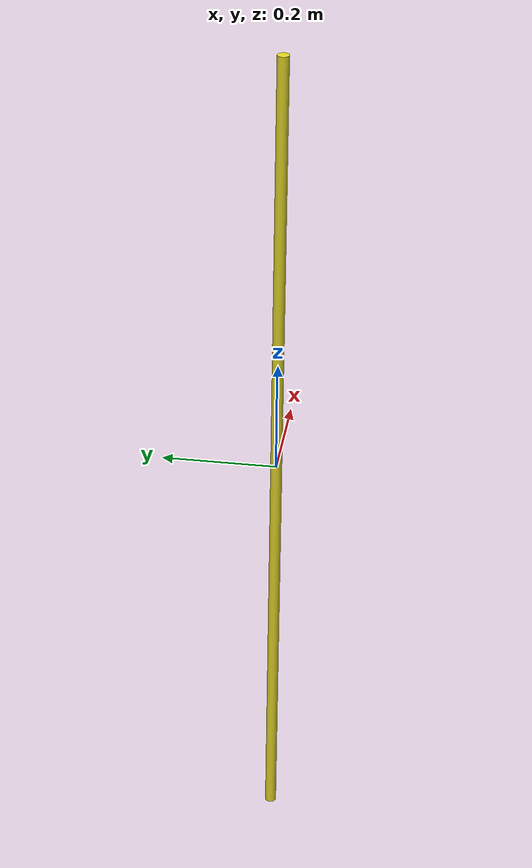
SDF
<?xml version="1.0" ?>

<sdf version="1.5">
  <model name="pendulum_pole">
    <link name="pole">
      <pose>0 0 0 0 0 0</pose>
      <velocity_decay>
        <linear>0.01</linear>
        <angular>0.10</angular>
      </velocity_decay>
      <inertial>
        <pose>0 0 0 0 0 0</pose>
        <mass>0.08</mass>
        <inertia>
          <ixx>0.015002000000000001</ixx>
          <ixy>0</ixy>
          <ixz>0</ixz>
          <iyy>0.015002000000000001</iyy>
          <iyz>0</iyz>
          <izz>4.000000000000001e-06</izz>
        </inertia>
      </inertial>
      <collision name="pole_collision">
        <pose>0 0 0 0 0 0</pose>
        <geometry>
          <cylinder>
            <length>1.5</length>
            <radius>0.01</radius>
          </cylinder>
        </geometry>
        <surface>
          <contact>
            <ode>
              <max_vel>1.0</max_vel>
              <min_depth>0.002</min_depth>
            </ode>
          </contact>
          <friction>
            <ode>
              <mu>100000</mu>
              <mu2>100000</mu2>
            </ode>
          </friction>
        </surface>
      </collision>
      <visual name="pole_visual">
        <pose>0 0 0 0 0 0</pose>
        <geometry>
          <cylinder>
            <length>1.5</length>
            <radius>0.01</radius>
          </cylinder>
        </geometry>
        <material>
          <script>
            <name>Gazebo/Yellow</name>
          </script>
        </material>
      </visual>
    </link>

    <plugin name="pole_hold_release_plugin" filename="libPoleHoldReleasePlugin.so">
      <linkName>pole</linkName>
      <unlockTopic>/pendulum_pole/unlock</unlockTopic>
      <setPositionTopic>/pendulum_pole/set_position_ned</setPositionTopic>
      <posP>80</posP>
      <posD>18</posD>
      <rotP>2</rotP>
      <rotD>0.4</rotD>
      <maxForce>200</maxForce>
      <maxTorque>20</maxTorque>
    </plugin>

    <plugin name="pole_mavlink_pose_plugin" filename="libPoleMavlinkPosePlugin.so">
      <linkName>pole</linkName>
      <tcpAddr>127.0.0.1</tcpAddr>
      <tcpPort>14557</tcpPort>
      <sendRateHz>200</sendRateHz>
      <rosTargetTopic>/pendulum_pole/set_position_ned</rosTargetTopic>
      <rosFrameId>local_ned</rosFrameId>
      <odomPointOffset>0 0 0.75</odomPointOffset>
      <systemId>42</systemId>
      <componentId>191</componentId>
    </plugin>
  </model>
</sdf>
